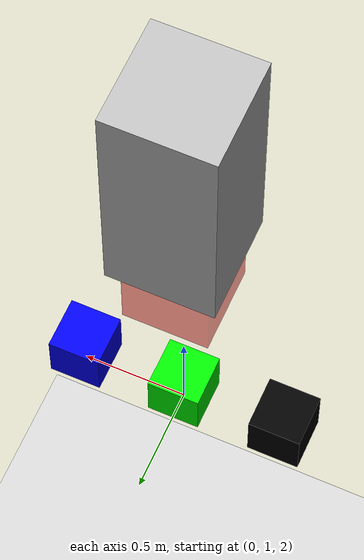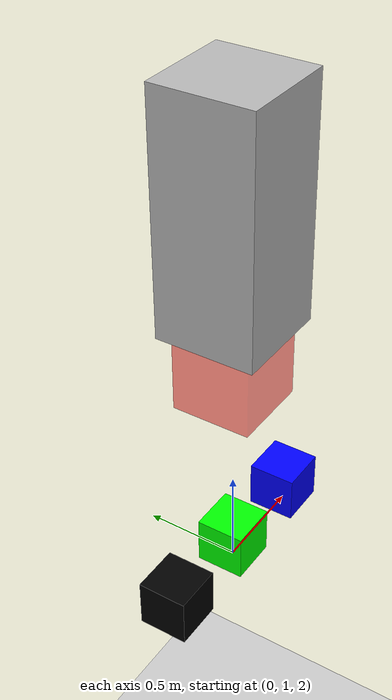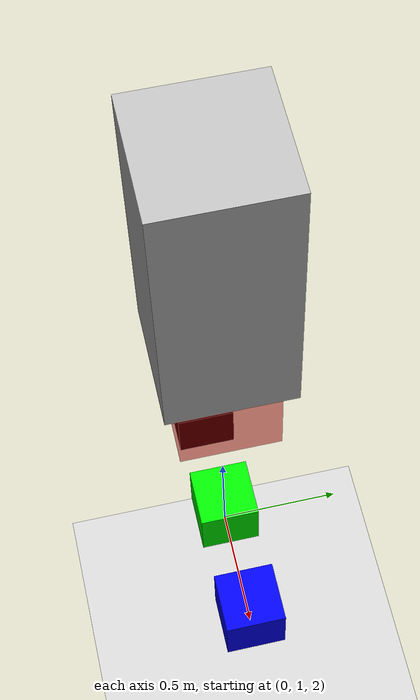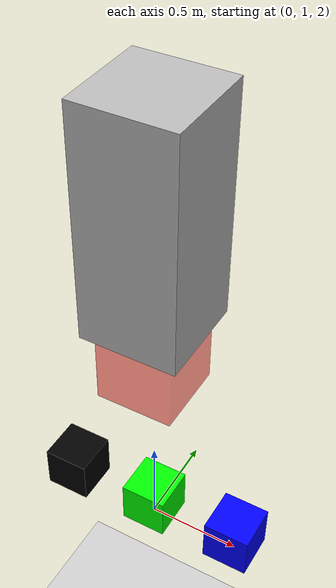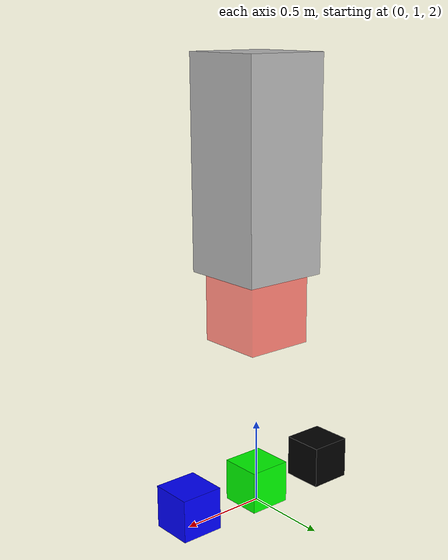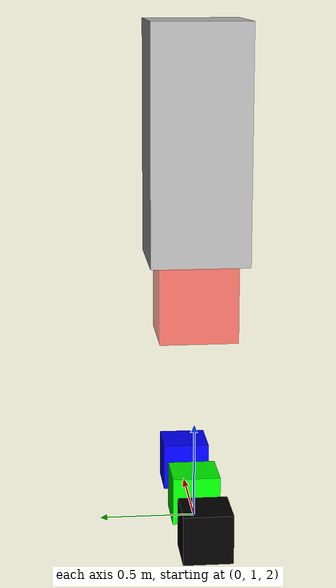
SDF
<sdf version="1.4">
 <world name="1grip_1block">
  <include><uri>model://ground_plane</uri></include>
  <include><uri>model://sun</uri></include>
  <model name="finger">
   <pose>0 1.0 4.0 0 0 0</pose>
   <link name="finger_body">
    <collision name="fbody_collision"><geometry><box><size>0.5 0.5 1</size></box></geometry></collision>
    <gravity>0</gravity>
    <visual name="fbody_visual">
     <geometry><box><size>0.5 0.5 1.2</size></box></geometry>
     <transparency>0.0</transparency>
    </visual>
   </link>
   <link name="finger_tip">
    <pose>0 0 -0.75 0 0 0</pose>
    <gravity>0</gravity>
    <visual name="ftip_visual">
     <geometry><box><size>0.4 0.4 0.5</size></box></geometry>
     <transparency>0.5</transparency>
     <material><ambient>1.0 0.0 0.0 0.0</ambient></material>
    </visual>
    <collision name="ftip_collision"><geometry><box><size>0.4 0.4 0.5</size></box></geometry></collision>
    <sensor name="tip_contact" type="contact">
     <plugin name="sticky_finger" filename="libsticky_fingers.so"><capacity>25</capacity></plugin>
     <contact><collision>ftip_collision</collision></contact>
    </sensor>
   </link>
   <joint name="fixed1" type="prismatic">
    <parent>finger_body</parent>
    <child>finger_tip</child>
    <axis><xyz>0 0 1</xyz><limit><upper>0</upper><lower>0</lower></limit></axis>
   </joint>
  </model>
  <model name="blocks_light">
   <pose>0 1.0 2.125 0 0 0</pose>
   <link name="b1_body">
    <collision name="b1_collision"><geometry><box><size>0.25 0.25 0.25</size></box></geometry></collision>
    <visual name="b1_visual">
     <geometry><box><size>0.25 0.25 0.25</size></box></geometry>
     <material><ambient>0.0 1.0 0.0 0.0</ambient></material>
    </visual>
   </link>
   <link name="b2_body">
    <pose>0.5 0 0 0 0 0</pose>
    <collision name="b2_collision"><geometry><box><size>0.25 0.25 0.25</size></box></geometry></collision>
    <visual name="b2_visual">
     <geometry><box><size>0.25 0.25 0.25</size></box></geometry>
     <material><ambient>0.0 0.0 1.0 0.0</ambient></material>
    </visual>
   </link>
   <joint name="fixed2" type="prismatic">
    <parent>b2_body</parent>
    <child>b1_body</child>
    <axis><xyz>0 0 1</xyz><limit><upper>0.1</upper><lower>-0.1</lower></limit></axis>
   </joint>
  </model>
  <model name="block_heavy">
   <pose>-0.5 1.0 2.125 0 0 0</pose>
   <link name="bh_body">
    <collision name="bh_collision"><geometry><box><size>0.25 0.25 0.25</size></box></geometry></collision>
    <visual name="bh_visual">
     <geometry><box><size>0.25 0.25 0.25</size></box></geometry>
     <material><ambient>0.0 0.0 0.0 0.0</ambient></material>
    </visual>
    <inertial><mass>50</mass></inertial>
   </link>
  </model>
 </world>
</sdf>
